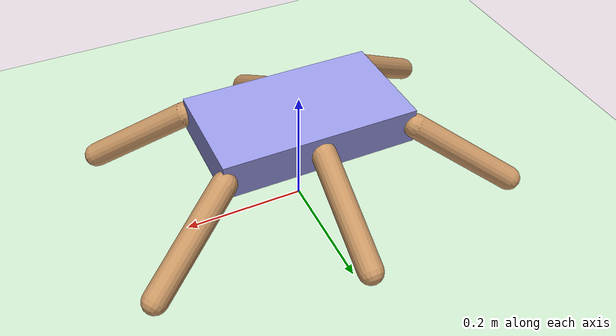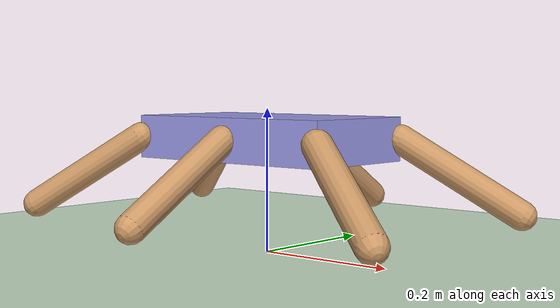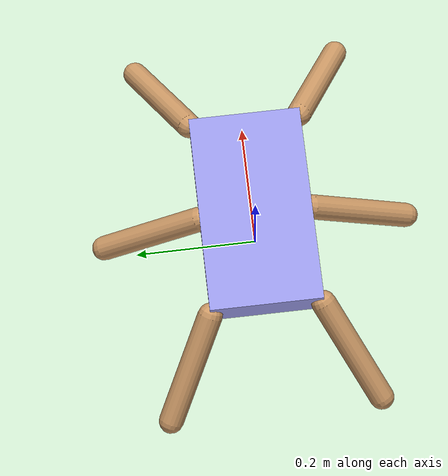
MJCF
<mujoco model="hexapod">
  <compiler angle="degree" coordinate="local" inertiafromgeom="true"/>
  <option integrator="RK4" timestep="0.01"/>
  <default>
    <joint armature="0.5" damping="1" limited="true"/>
    <geom conaffinity="0" condim="3" density="5.0" friction="1 0.5 0.5" margin="0.01" rgba="0.8 0.6 0.4 1"/>
  </default>
  <asset>
    <texture builtin="gradient" height="100" rgb1="1 1 1" rgb2="0 0 0" type="skybox" width="100"/>
    <texture builtin="flat" height="1278" mark="cross" markrgb="1 1 1" name="texgeom" random="0.01" rgb1="0.8 0.6 0.4" rgb2="0.8 0.6 0.4" type="cube" width="127"/>
    <texture builtin="checker" height="100" name="texplane" rgb1="0 0 0" rgb2="0.8 0.8 0.8" type="2d" width="100"/>
    <material name="MatPlane" reflectance="0.5" shininess="1" specular="1" texrepeat="60 60" texture="texplane"/>
    <material name="geom" texture="texgeom" texuniform="true"/>
  </asset>
  <worldbody>
    <light cutoff="100" diffuse="1 1 1" dir="-0 0 -1.3" directional="true" exponent="1" pos="0 0 1.3" specular=".1 .1 .1"/>
    <geom conaffinity="1" condim="3" material="MatPlane" name="floor" pos="0 0 0" rgba="0.8 0.9 0.8 1" size="40 40 40" type="plane"/>

    <body name="torso" pos="0 0 0.16">
      <camera name="track" mode="trackcom" pos="0 -1.2 0.5" xyaxes="1 0 0 0 0 1"/>
      <geom name="torso_geom" type="box" size="0.16 0.09 0.03" rgba="0.6 0.6 0.9 1"/>
      <joint armature="0" damping="0" limited="false" margin="0.01" name="root" pos="0 0 0" type="free"/>

      <!-- Left side: front, mid, back -->
      <body name="leg_front_left" pos="0.16 0.09 0">
        <joint axis="0 0 1" name="sweep_front_left" pos="0 0 0" range="-45 45" type="hinge"/>
        <joint axis="1 0 0" name="lift_front_left" pos="0 0 0" range="-15 60" type="hinge"/>
        <geom fromto="0.0 0.0 0.0 0.14 0.08 -0.10" name="leg_fl_geom" size="0.02" type="capsule"/>
      </body>

      <body name="leg_mid_left" pos="0.0 0.09 0">
        <joint axis="0 0 1" name="sweep_mid_left" pos="0 0 0" range="-45 45" type="hinge"/>
        <joint axis="1 0 0" name="lift_mid_left" pos="0 0 0" range="-15 60" type="hinge"/>
        <geom fromto="0.0 0.0 0.0 0.0 0.16 -0.10" name="leg_ml_geom" size="0.02" type="capsule"/>
      </body>

      <body name="leg_back_left" pos="-0.16 0.09 0">
        <joint axis="0 0 1" name="sweep_back_left" pos="0 0 0" range="-45 45" type="hinge"/>
        <joint axis="1 0 0" name="lift_back_left" pos="0 0 0" range="-15 60" type="hinge"/>
        <geom fromto="0.0 0.0 0.0 -0.14 0.08 -0.10" name="leg_bl_geom" size="0.02" type="capsule"/>
      </body>

      <!-- Right side: back, mid, front (mirrors walker.py's ordering: legs 3,4,5) -->
      <body name="leg_back_right" pos="-0.16 -0.09 0">
        <joint axis="0 0 1" name="sweep_back_right" pos="0 0 0" range="-45 45" type="hinge"/>
        <joint axis="-1 0 0" name="lift_back_right" pos="0 0 0" range="-15 60" type="hinge"/>
        <geom fromto="0.0 0.0 0.0 -0.14 -0.08 -0.10" name="leg_br_geom" size="0.02" type="capsule"/>
      </body>

      <body name="leg_mid_right" pos="0.0 -0.09 0">
        <joint axis="0 0 1" name="sweep_mid_right" pos="0 0 0" range="-45 45" type="hinge"/>
        <joint axis="-1 0 0" name="lift_mid_right" pos="0 0 0" range="-15 60" type="hinge"/>
        <geom fromto="0.0 0.0 0.0 0.0 -0.16 -0.10" name="leg_mr_geom" size="0.02" type="capsule"/>
      </body>

      <body name="leg_front_right" pos="0.16 -0.09 0">
        <joint axis="0 0 1" name="sweep_front_right" pos="0 0 0" range="-45 45" type="hinge"/>
        <joint axis="-1 0 0" name="lift_front_right" pos="0 0 0" range="-15 60" type="hinge"/>
        <geom fromto="0.0 0.0 0.0 0.14 -0.08 -0.10" name="leg_fr_geom" size="0.02" type="capsule"/>
      </body>
    </body>
  </worldbody>

  <actuator>
    <motor ctrllimited="true" ctrlrange="-1.0 1.0" joint="sweep_front_left" gear="15"/>
    <motor ctrllimited="true" ctrlrange="-1.0 1.0" joint="lift_front_left" gear="15"/>
    <motor ctrllimited="true" ctrlrange="-1.0 1.0" joint="sweep_mid_left" gear="15"/>
    <motor ctrllimited="true" ctrlrange="-1.0 1.0" joint="lift_mid_left" gear="15"/>
    <motor ctrllimited="true" ctrlrange="-1.0 1.0" joint="sweep_back_left" gear="15"/>
    <motor ctrllimited="true" ctrlrange="-1.0 1.0" joint="lift_back_left" gear="15"/>
    <motor ctrllimited="true" ctrlrange="-1.0 1.0" joint="sweep_back_right" gear="15"/>
    <motor ctrllimited="true" ctrlrange="-1.0 1.0" joint="lift_back_right" gear="15"/>
    <motor ctrllimited="true" ctrlrange="-1.0 1.0" joint="sweep_mid_right" gear="15"/>
    <motor ctrllimited="true" ctrlrange="-1.0 1.0" joint="lift_mid_right" gear="15"/>
    <motor ctrllimited="true" ctrlrange="-1.0 1.0" joint="sweep_front_right" gear="15"/>
    <motor ctrllimited="true" ctrlrange="-1.0 1.0" joint="lift_front_right" gear="15"/>
  </actuator>
</mujoco>
